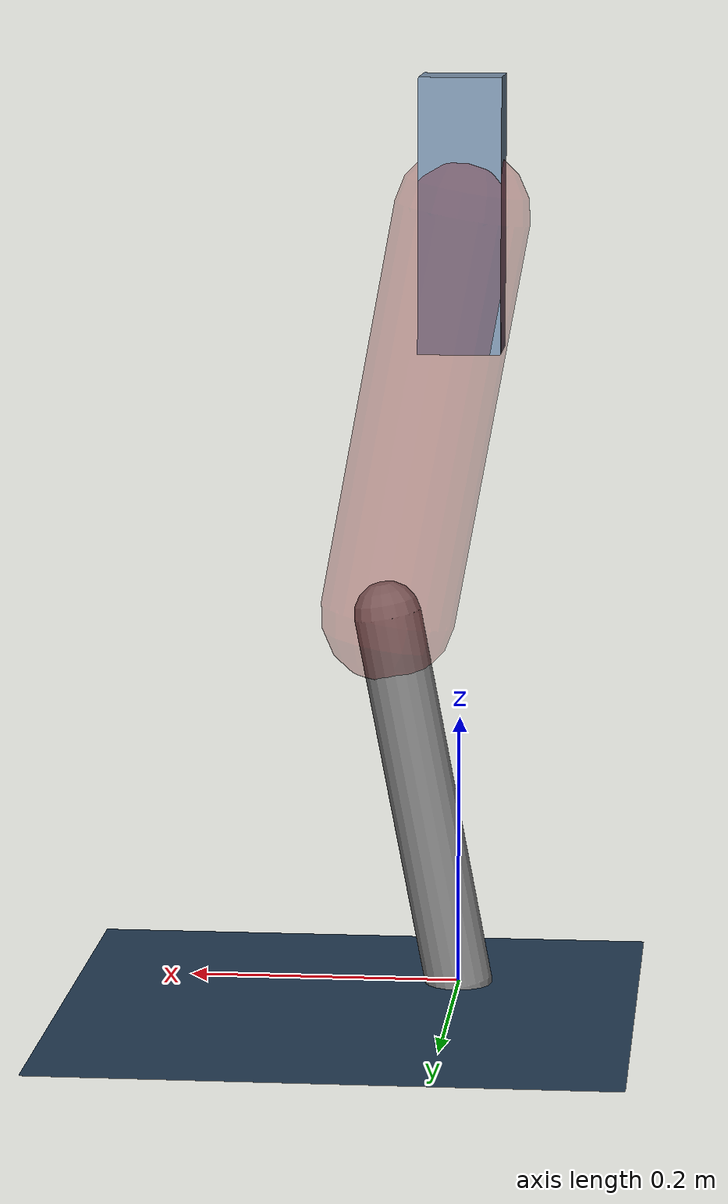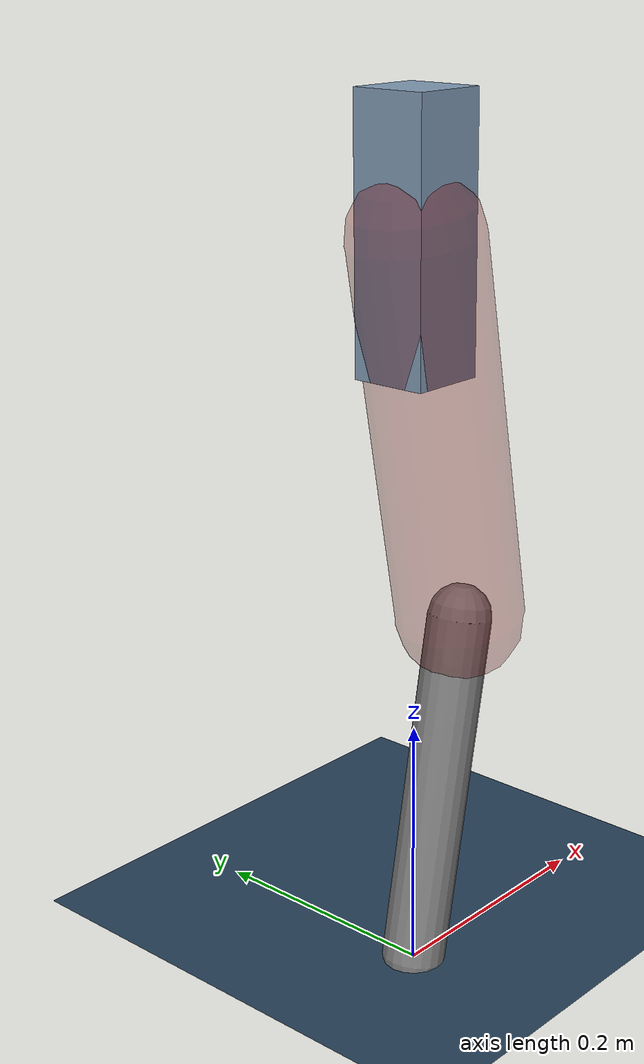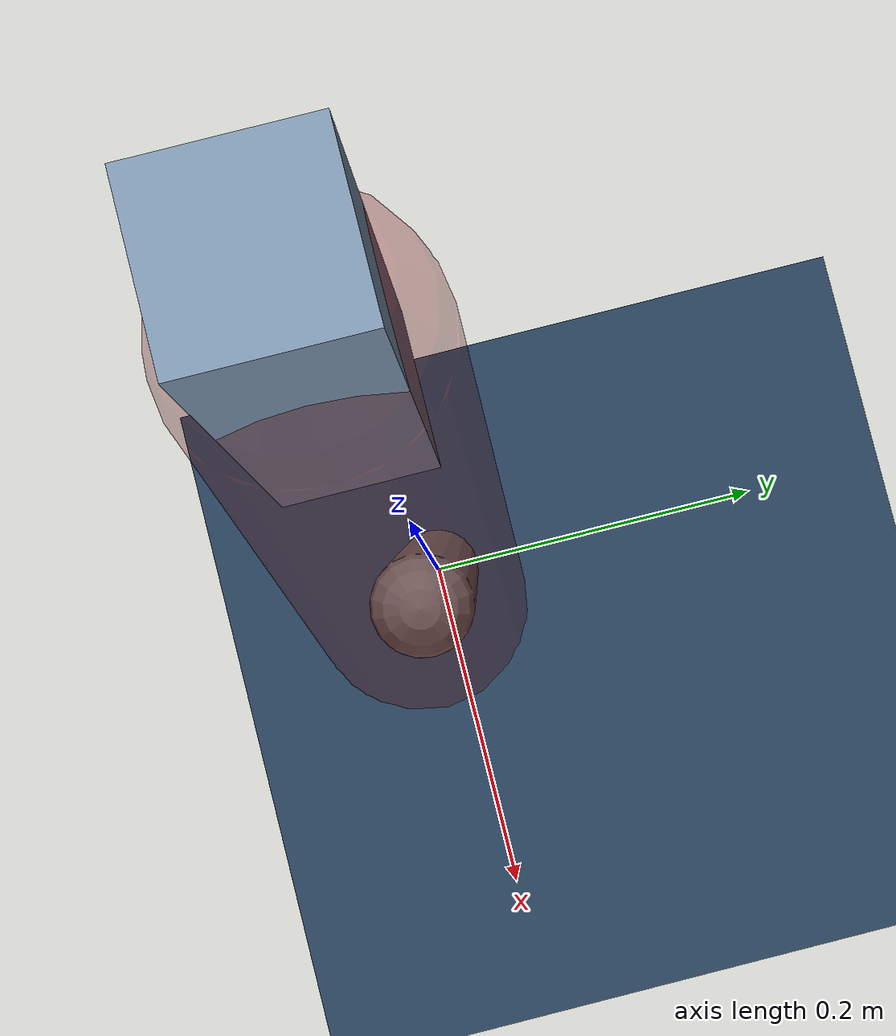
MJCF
<mujoco model="Hopper2D">
	<compiler inertiafromgeom="true" angle="radian" />
	<option timestep="0.001" integrator="implicit" cone="elliptic" solver="Newton" tolerance="1e-10" />

	<default>
		<geom contype="1" conaffinity="1" condim="3" friction="2 0.005 0.0001" solref="0.005 1" />
		<joint limited="true" damping="0.1" />
	</default>

	<asset>
		<texture name="skybox" type="skybox" builtin="gradient" rgb1=".4 .6 .8" rgb2="0 0 0" width="800" height="800" />
		<texture name="grid" type="2d" builtin="checker" rgb1=".1 .2 .3" rgb2=".2 .3 .4" width="300" height="300" mark="edge" markrgb=".2 .3 .4" />
		<material name="ground" texture="grid" texrepeat="1 1" texuniform="true" reflectance="0.1" />
		<material name="leg" rgba="0.5 0.6 0.7 1" />
	</asset>

	<worldbody>

		<geom name="floor" type="plane" size="5 5 0.25" material="ground" />

		<light directional="false" diffuse="0.8 0.8 0.8" specular="0.3 0.3 0.3" pos="0 0 2" dir="0 0 -1" />
		<light mode="targetbodycom" target="base" directional="false" diffuse="0.8 0.8 0.8" specular="0.3 0.3 0.3" pos="0 0 2" dir="0 0 -1" />

		<camera name="fixed" pos="0 -2 1" xyaxes="1 0 0 0 0 1" />
		<camera name="tracking" mode="trackcom" pos="0 -3 1" />

		<body name="root" pos="0 0 0.5731064870879681">
			<joint name="slide_x" type="slide" axis="1 0 0" range="-100 100" />
			<joint name="slide_z" type="slide" axis="0 0 1" range="0 10" />

			<body name="base" pos="0 0 0">
				<geom name="torso" type="box" size="0.03 0.03 0.1" mass="3.129" material="leg" />

				<body name="link1" pos="0 0 0" euler="0 1.3914745990817234 0">
					<joint type="hinge" axis="0 -1 0" pos="0 0 0" name="hinge1" limited="true" range="-3.14 3.14" stiffness="0" damping="0.1" />
					<geom name="thigh" type="capsule" fromto="0 0 0 0.30125683564804095 0 0" size="0.05" rgba="0.5 0 0 0.3" mass="0.9920934562497106" />

					<body name="link2" pos="0.30125683564804095 0 0" euler="0 0.3711394763161728 0">
						<joint type="hinge" axis="0 -1 0" pos="0 0 0" name="hinge2" limited="true" range="-3.14 3.14" stiffness="0" damping="0.1" />
						<geom name="shank" type="capsule" fromto="0 0 0 0.28184965143992713 0 0" size="0.025" mass="0.46866468629593444" />

					</body>
				</body>
			</body>
		</body>
	</worldbody>

	<actuator>
		<motor name="torque1" joint="hinge1" ctrlrange="-102.49110922875714 102.49110922875714" ctrllimited="true" gear="1" />
		<motor name="torque2" joint="hinge2" ctrlrange="-116.43709387801394 116.43709387801394" ctrllimited="true" gear="1" />
	</actuator>
</mujoco>
